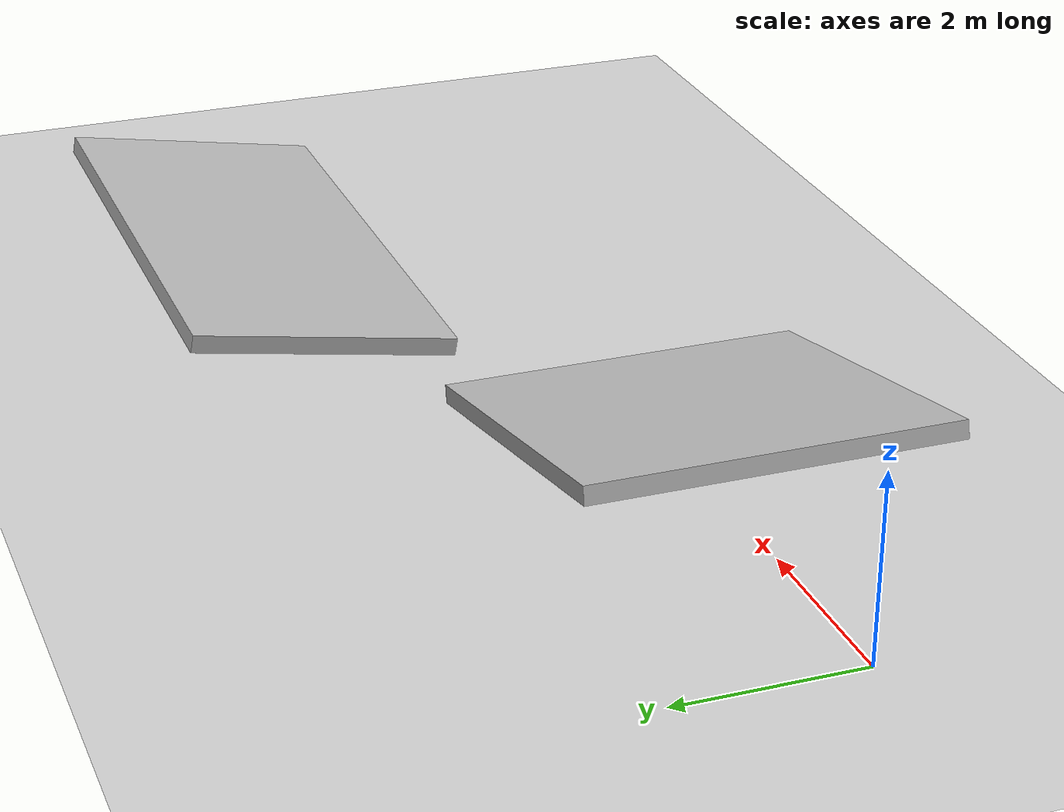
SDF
<?xml version="1.0"?>
<sdf version="1.7">
  <world name="ramp">
    <include>
      <uri>model://sun</uri>
    </include>

    <physics type="ode">
      <max_step_size>0.001</max_step_size>
      <real_time_update_rate>1000</real_time_update_rate>
    </physics>
    <gravity>0 0 -9.81</gravity>

    <model name="ground_plane">
      <static>true</static>
      <pose>0 0 0 0 0 0</pose>
      <link name="link">
        <collision name="collision">
          <geometry>
            <plane>
              <normal>0 0 1</normal>
              <size>200 200</size>
            </plane>
          </geometry>
        </collision>
        <visual name="visual">
          <geometry>
            <plane>
              <normal>0 0 1</normal>
              <size>200 200</size>
            </plane>
          </geometry>
        </visual>
      </link>
    </model>

    <!-- Inclined ramp for pitch validation -->
    <model name="ramp">
      <static>true</static>
      <!-- Pose: x y z roll pitch yaw; pitch ~ 12deg -->
      <pose>4 0 0.62 0 0.21 0</pose>
      <link name="link">
        <collision name="collision">
          <geometry>
            <box>
              <size>4.0 4.0 0.20</size>
            </box>
          </geometry>
          <surface>
            <friction>
              <ode>
                <mu>1.2</mu>
                <mu2>1.2</mu2>
              </ode>
            </friction>
          </surface>
        </collision>
        <visual name="visual">
          <geometry>
            <box>
              <size>4.0 4.0 0.20</size>
            </box>
          </geometry>
        </visual>
      </link>
    </model>

    <!-- Off-camber plate to force roll while moving -->
    <model name="offcamber">
      <static>true</static>
      <!-- roll ~ 10deg -->
      <pose>10 3 0.45 0.17 0 0</pose>
      <link name="link">
        <collision name="collision">
          <geometry>
            <box>
              <size>6.0 3.0 0.20</size>
            </box>
          </geometry>
        </collision>
        <visual name="visual">
          <geometry>
            <box>
              <size>6.0 3.0 0.20</size>
            </box>
          </geometry>
        </visual>
      </link>
    </model>
  </world>
</sdf>
